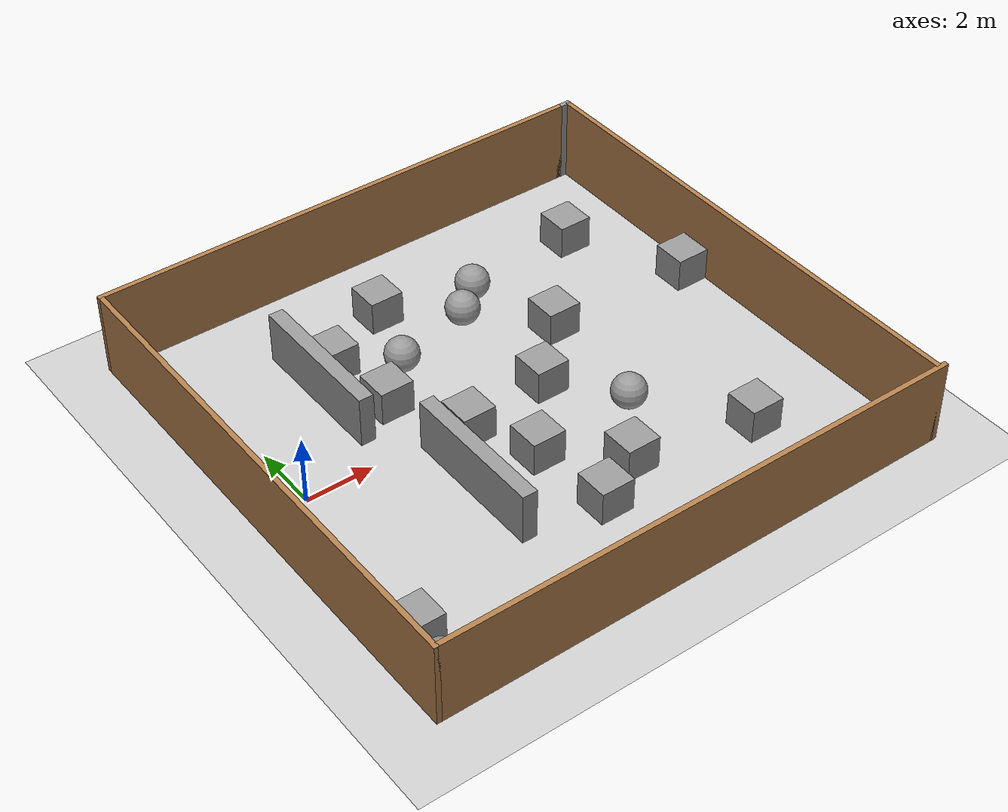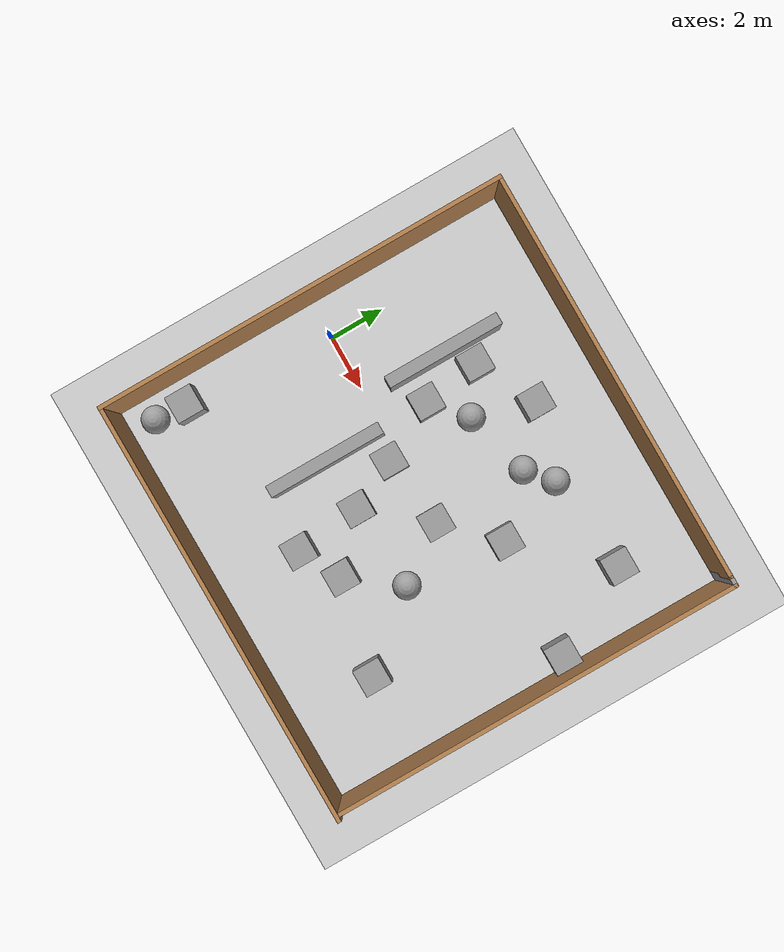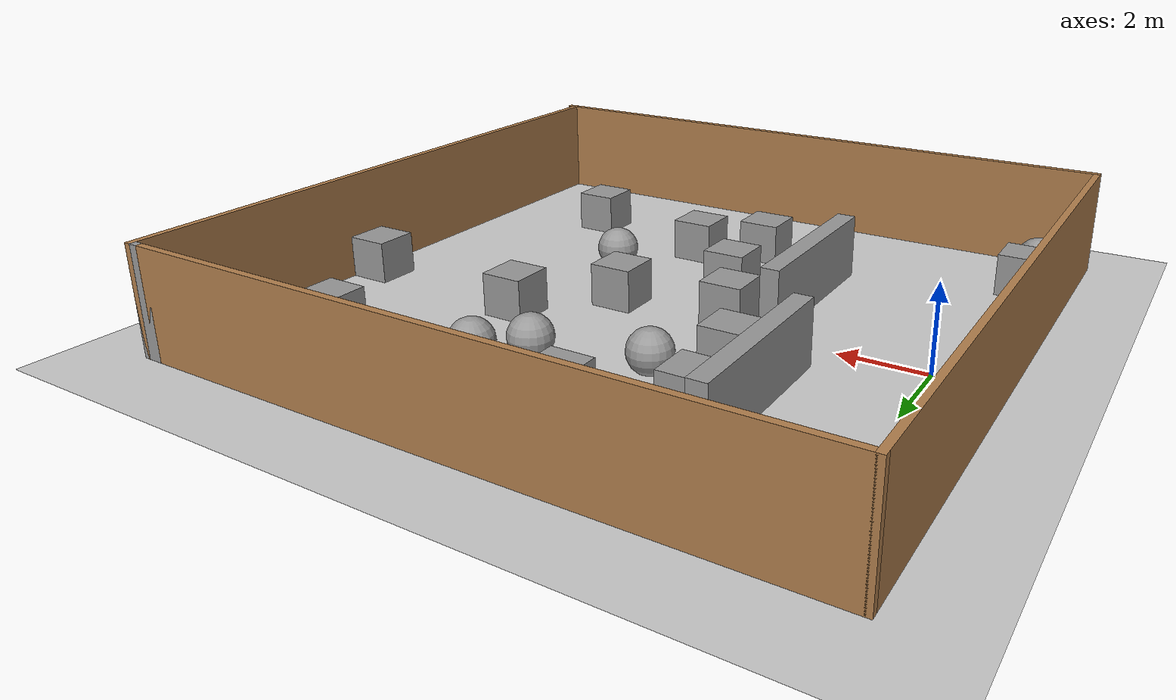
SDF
<sdf version="1.7">
 <world name="default">
  <light name="sun" type="directional">
   <pose>0 0 10 0 -0 0</pose>
   <diffuse>0.8 0.8 0.8 1</diffuse>
   <specular>0.2 0.2 0.2 1</specular>
   <attenuation>
    <range>1000</range>
    <constant>0.9</constant>
    <linear>0.01</linear>
    <quadratic>0.001</quadratic>
   </attenuation>
   <direction>-0.5 0.1 -0.9</direction>
   <spot><inner_angle>0</inner_angle><outer_angle>0</outer_angle><falloff>0</falloff></spot>
  </light>
  <model name="ground_plane">
   <static>1</static>
   <link name="link">
    <collision name="collision">
     <geometry><plane><normal>0 0 1</normal><size>100 100</size></plane></geometry>
     <surface><friction><ode><mu>100</mu><mu2>50</mu2></ode></friction></surface>
    </collision>
    <visual name="visual">
     <cast_shadows>0</cast_shadows>
     <geometry><plane><normal>0 0 1</normal><size>100 100</size></plane></geometry>
     <material>
      <script><uri>file://media/materials/scripts/gazebo.material</uri><name>Gazebo/Grey</name></script>
     </material>
    </visual>
   </link>
  </model>
  <gravity>0 0 -9.8</gravity>
  <magnetic_field>6e-06 2.3e-05 -4.2e-05</magnetic_field>
  <atmosphere type="adiabatic"/>
  <physics type="ode">
   <max_step_size>0.001</max_step_size>
   <real_time_factor>1</real_time_factor>
   <real_time_update_rate>1000</real_time_update_rate>
  </physics>
  <scene><ambient>0.4 0.4 0.4 1</ambient><background>0.7 0.7 0.7 1</background><shadows>1</shadows></scene>
  <spherical_coordinates>
   <surface_model>EARTH_WGS84</surface_model>
   <latitude_deg>0</latitude_deg>
   <longitude_deg>0</longitude_deg>
   <elevation>0</elevation>
   <heading_deg>0</heading_deg>
  </spherical_coordinates>
  <model name="square01">
   <pose>6.34279 -0.168803 0 0 -0 0</pose>
   <link name="Wall_11">
    <collision name="Wall_11_Collision">
     <geometry><box><size>15.25 0.15 2.5</size></box></geometry>
     <pose>0 0 1.25 0 -0 0</pose>
    </collision>
    <visual name="Wall_11_Visual">
     <pose>0 0 1.25 0 -0 0</pose>
     <geometry><box><size>15.25 0.15 2.5</size></box></geometry>
     <material>
      <script><uri>file://media/materials/scripts/gazebo.material</uri><name>Gazebo/Wood</name></script>
      <ambient>1 1 1 1</ambient>
     </material>
     <meta><layer>0</layer></meta>
    </visual>
    <pose>-7.8 0 0 0 -0 -1.5708</pose>
   </link>
   <link name="Wall_13">
    <collision name="Wall_13_Collision">
     <geometry><box><size>15.75 0.15 2.5</size></box></geometry>
     <pose>0 0 1.25 0 -0 0</pose>
    </collision>
    <visual name="Wall_13_Visual">
     <pose>0 0 1.25 0 -0 0</pose>
     <geometry><box><size>15.75 0.15 2.5</size></box></geometry>
     <material>
      <script><uri>file://media/materials/scripts/gazebo.material</uri><name>Gazebo/Wood</name></script>
      <ambient>1 1 1 1</ambient>
     </material>
     <meta><layer>0</layer></meta>
    </visual>
    <pose>0 -7.55 0 0 -0 0</pose>
   </link>
   <link name="Wall_15">
    <collision name="Wall_15_Collision">
     <geometry><box><size>15.25 0.15 2.5</size></box></geometry>
     <pose>0 0 1.25 0 -0 0</pose>
    </collision>
    <visual name="Wall_15_Visual">
     <pose>0 0 1.25 0 -0 0</pose>
     <geometry><box><size>15.25 0.15 2.5</size></box></geometry>
     <material>
      <script><uri>file://media/materials/scripts/gazebo.material</uri><name>Gazebo/Wood</name></script>
      <ambient>1 1 1 1</ambient>
     </material>
     <meta><layer>0</layer></meta>
    </visual>
    <pose>-0.25 7.55 0 0 -0 0</pose>
   </link>
   <link name="Wall_16">
    <collision name="Wall_16_Collision">
     <geometry><box><size>0.5 0.15 2.5</size></box></geometry>
     <pose>0 0 1.25 0 -0 0</pose>
    </collision>
    <visual name="Wall_16_Visual">
     <pose>0 0 1.25 0 -0 0</pose>
     <geometry><box><size>0.5 0.15 2.5</size></box></geometry>
     <material>
      <script><uri>file://media/materials/scripts/gazebo.material</uri><name>Gazebo/Grey</name></script>
      <ambient>1 1 1 1</ambient>
     </material>
     <meta><layer>0</layer></meta>
    </visual>
    <pose>7.475 7.55 0 0 -0 0</pose>
   </link>
   <link name="Wall_17">
    <collision name="Wall_17_Collision">
     <geometry><box><size>15.25 0.15 2.5</size></box></geometry>
     <pose>0 0 1.25 0 -0 0</pose>
    </collision>
    <visual name="Wall_17_Visual">
     <pose>0 0 1.25 0 -0 0</pose>
     <geometry><box><size>15.25 0.15 2.5</size></box></geometry>
     <material>
      <script><uri>file://media/materials/scripts/gazebo.material</uri><name>Gazebo/Wood</name></script>
      <ambient>1 1 1 1</ambient>
     </material>
     <meta><layer>0</layer></meta>
    </visual>
    <pose>7.65 0 0 0 -0 -1.5708</pose>
   </link>
   <static>1</static>
  </model>
  <model name="unit_box">
   <pose>5.4748 4.93046 0.5 0 -0 0</pose>
   <link name="link">
    <inertial>
     <mass>1</mass>
     <inertia>
      <ixx>0.166667</ixx>
      <ixy>0</ixy>
      <ixz>0</ixz>
      <iyy>0.166667</iyy>
      <iyz>0</iyz>
      <izz>0.166667</izz>
     </inertia>
    </inertial>
    <collision name="collision"><geometry><box><size>1 1 1</size></box></geometry></collision>
    <visual name="visual">
     <geometry><box><size>1 1 1</size></box></geometry>
     <material>
      <script><name>Gazebo/Grey</name><uri>file://media/materials/scripts/gazebo.material</uri></script>
     </material>
    </visual>
   </link>
  </model>
  <model name="unit_box_2">
   <pose>7.32303 -3.81277 0.5 0 -0 0</pose>
   <link name="link">
    <inertial>
     <mass>1</mass>
     <inertia>
      <ixx>0.166667</ixx>
      <ixy>0</ixy>
      <ixz>0</ixz>
      <iyy>0.166667</iyy>
      <iyz>0</iyz>
      <izz>0.166667</izz>
     </inertia>
    </inertial>
    <collision name="collision"><geometry><box><size>1 1 1</size></box></geometry></collision>
    <visual name="visual">
     <geometry><box><size>1 1 1</size></box></geometry>
     <material>
      <script><name>Gazebo/Grey</name><uri>file://media/materials/scripts/gazebo.material</uri></script>
     </material>
    </visual>
   </link>
  </model>
  <model name="unit_sphere">
   <pose>8.15725 4.18967 0.5 0 -0 0</pose>
   <link name="link">
    <inertial>
     <mass>1</mass>
     <inertia><ixx>0.1</ixx><ixy>0</ixy><ixz>0</ixz><iyy>0.1</iyy><iyz>0</iyz><izz>0.1</izz></inertia>
    </inertial>
    <collision name="collision"><geometry><sphere><radius>0.5</radius></sphere></geometry></collision>
    <visual name="visual">
     <geometry><sphere><radius>0.5</radius></sphere></geometry>
     <material>
      <script><name>Gazebo/Grey</name><uri>file://media/materials/scripts/gazebo.material</uri></script>
     </material>
    </visual>
   </link>
  </model>
  <model name="unit_box_3">
   <pose>5.57634 -2.18999 0.5 0 -0 0</pose>
   <link name="link">
    <inertial>
     <mass>1</mass>
     <inertia>
      <ixx>0.166667</ixx>
      <ixy>0</ixy>
      <ixz>0</ixz>
      <iyy>0.166667</iyy>
      <iyz>0</iyz>
      <izz>0.166667</izz>
     </inertia>
    </inertial>
    <collision name="collision"><geometry><box><size>1 1 1</size></box></geometry></collision>
    <visual name="visual">
     <geometry><box><size>1 1 1</size></box></geometry>
     <material>
      <script><name>Gazebo/Grey</name><uri>file://media/materials/scripts/gazebo.material</uri></script>
     </material>
    </visual>
   </link>
  </model>
  <model name="unit_sphere_0">
   <pose>8.714 -2.02041 0.5 0 -0 0</pose>
   <link name="link">
    <inertial>
     <mass>1</mass>
     <inertia><ixx>0.1</ixx><ixy>0</ixy><ixz>0</ixz><iyy>0.1</iyy><iyz>0</iyz><izz>0.1</izz></inertia>
    </inertial>
    <collision name="collision"><geometry><sphere><radius>0.5</radius></sphere></geometry></collision>
    <visual name="visual">
     <geometry><sphere><radius>0.5</radius></sphere></geometry>
     <material>
      <script><name>Gazebo/Grey</name><uri>file://media/materials/scripts/gazebo.material</uri></script>
     </material>
    </visual>
   </link>
  </model>
  <model name="unit_box_4">
   <pose>9.06461 1.6481 0.5 0 -0 0</pose>
   <link name="link">
    <inertial>
     <mass>1</mass>
     <inertia>
      <ixx>0.166667</ixx>
      <ixy>0</ixy>
      <ixz>0</ixz>
      <iyy>0.166667</iyy>
      <iyz>0</iyz>
      <izz>0.166667</izz>
     </inertia>
    </inertial>
    <collision name="collision"><geometry><box><size>1 1 1</size></box></geometry></collision>
    <visual name="visual">
     <geometry><box><size>1 1 1</size></box></geometry>
     <material>
      <script><name>Gazebo/Grey</name><uri>file://media/materials/scripts/gazebo.material</uri></script>
     </material>
    </visual>
   </link>
  </model>
  <model name="unit_sphere_1">
   <pose>4.81301 2.77811 0.5 0 -0 0</pose>
   <link name="link">
    <inertial>
     <mass>1</mass>
     <inertia><ixx>0.1</ixx><ixy>0</ixy><ixz>0</ixz><iyy>0.1</iyy><iyz>0</iyz><izz>0.1</izz></inertia>
    </inertial>
    <collision name="collision"><geometry><sphere><radius>0.5</radius></sphere></geometry></collision>
    <visual name="visual">
     <geometry><sphere><radius>0.5</radius></sphere></geometry>
     <material>
      <script><name>Gazebo/Grey</name><uri>file://media/materials/scripts/gazebo.material</uri></script>
     </material>
    </visual>
   </link>
  </model>
  <model name="unit_box_5">
   <pose>10.8002 -4.57428 0.5 0 -0 0</pose>
   <link name="link">
    <inertial>
     <mass>1</mass>
     <inertia>
      <ixx>0.166667</ixx>
      <ixy>0</ixy>
      <ixz>0</ixz>
      <iyy>0.166667</iyy>
      <iyz>0</iyz>
      <izz>0.166667</izz>
     </inertia>
    </inertial>
    <collision name="collision"><geometry><box><size>1 1 1</size></box></geometry></collision>
    <visual name="visual">
     <geometry><box><size>1 1 1</size></box></geometry>
     <material>
      <script><name>Gazebo/Grey</name><uri>file://media/materials/scripts/gazebo.material</uri></script>
     </material>
    </visual>
   </link>
  </model>
  <model name="unit_box1_clone_clone">
   <link name="link">
    <inertial>
     <mass>2.89311</mass>
     <inertia><ixx>5.09745</ixx><ixy>0</ixy><ixz>0</ixz><iyy>0.604244</iyy><iyz>0</iyz><izz>4.58584</izz></inertia>
    </inertial>
    <visual name="visual">
     <geometry><box><size>0.438301 4.33924 1.52124</size></box></geometry>
     <material>
      <script><name>Gazebo/Grey</name><uri>file://media/materials/scripts/gazebo.material</uri></script>
      <shader type="pixel"/>
     </material>
    </visual>
    <collision name="collision">
     <geometry><box><size>0.438301 4.33924 1.52124</size></box></geometry>
     <surface>
      <friction>
       <ode><mu>1</mu><mu2>1</mu2><fdir1>0 0 0</fdir1><slip1>0</slip1><slip2>0</slip2></ode>
       <torsional>
        <coefficient>1</coefficient>
        <patch_radius>0</patch_radius>
        <surface_radius>0</surface_radius>
        <use_patch_radius>1</use_patch_radius>
        <ode><slip>0</slip></ode>
       </torsional>
      </friction>
      <bounce><restitution_coefficient>0</restitution_coefficient><threshold>1e+06</threshold></bounce>
      <contact>
       <collide_without_contact>0</collide_without_contact>
       <collide_without_contact_bitmask>1</collide_without_contact_bitmask>
       <collide_bitmask>1</collide_bitmask>
       <ode>
        <soft_cfm>0</soft_cfm>
        <soft_erp>0.2</soft_erp>
        <kp>1e+13</kp>
        <kd>1</kd>
        <max_vel>0.01</max_vel>
        <min_depth>0</min_depth>
       </ode>
       <bullet>
        <split_impulse>1</split_impulse>
        <split_impulse_penetration_threshold>-0.01</split_impulse_penetration_threshold>
        <soft_cfm>0</soft_cfm>
        <soft_erp>0.2</soft_erp>
        <kp>1e+13</kp>
        <kd>1</kd>
       </bullet>
      </contact>
     </surface>
    </collision>
   </link>
   <static>0</static>
   <pose>3.62886 -2.25911 0.76062 0 -0 3e-06</pose>
  </model>
  <model name="unit_box1_clone_0">
   <link name="link">
    <inertial>
     <mass>2.89311</mass>
     <inertia><ixx>5.09745</ixx><ixy>0</ixy><ixz>0</ixz><iyy>0.604244</iyy><iyz>0</iyz><izz>4.58584</izz></inertia>
    </inertial>
    <visual name="visual">
     <geometry><box><size>0.438301 4.33924 1.52124</size></box></geometry>
     <material>
      <script><name>Gazebo/Grey</name><uri>file://media/materials/scripts/gazebo.material</uri></script>
      <shader type="pixel"/>
     </material>
    </visual>
    <collision name="collision">
     <geometry><box><size>0.438301 4.33924 1.52124</size></box></geometry>
     <surface>
      <friction>
       <ode><mu>1</mu><mu2>1</mu2><fdir1>0 0 0</fdir1><slip1>0</slip1><slip2>0</slip2></ode>
       <torsional>
        <coefficient>1</coefficient>
        <patch_radius>0</patch_radius>
        <surface_radius>0</surface_radius>
        <use_patch_radius>1</use_patch_radius>
        <ode><slip>0</slip></ode>
       </torsional>
      </friction>
      <bounce><restitution_coefficient>0</restitution_coefficient><threshold>1e+06</threshold></bounce>
      <contact>
       <collide_without_contact>0</collide_without_contact>
       <collide_without_contact_bitmask>1</collide_without_contact_bitmask>
       <collide_bitmask>1</collide_bitmask>
       <ode>
        <soft_cfm>0</soft_cfm>
        <soft_erp>0.2</soft_erp>
        <kp>1e+13</kp>
        <kd>1</kd>
        <max_vel>0.01</max_vel>
        <min_depth>0</min_depth>
       </ode>
       <bullet>
        <split_impulse>1</split_impulse>
        <split_impulse_penetration_threshold>-0.01</split_impulse_penetration_threshold>
        <soft_cfm>0</soft_cfm>
        <soft_erp>0.2</soft_erp>
        <kp>1e+13</kp>
        <kd>1</kd>
       </bullet>
      </contact>
     </surface>
    </collision>
   </link>
   <static>0</static>
   <pose>2.43527 3.02227 0.760613 -3e-06 1e-06 -2.6e-05</pose>
  </model>
  <model name="unit_box_2_clone">
   <pose>5.84288 -4.60435 0.5 0 -0 0</pose>
   <link name="link">
    <inertial>
     <mass>1</mass>
     <inertia>
      <ixx>0.166667</ixx>
      <ixy>0</ixy>
      <ixz>0</ixz>
      <iyy>0.166667</iyy>
      <iyz>0</iyz>
      <izz>0.166667</izz>
     </inertia>
    </inertial>
    <collision name="collision"><geometry><box><size>1 1 1</size></box></geometry></collision>
    <visual name="visual">
     <geometry><box><size>1 1 1</size></box></geometry>
     <material>
      <script><name>Gazebo/Grey</name><uri>file://media/materials/scripts/gazebo.material</uri></script>
     </material>
    </visual>
   </link>
  </model>
  <model name="unit_box_3_clone">
   <pose>3.29406 3.79799 0.5 0 -0 0</pose>
   <link name="link">
    <inertial>
     <mass>1</mass>
     <inertia>
      <ixx>0.166667</ixx>
      <ixy>0</ixy>
      <ixz>0</ixz>
      <iyy>0.166667</iyy>
      <iyz>0</iyz>
      <izz>0.166667</izz>
     </inertia>
    </inertial>
    <collision name="collision"><geometry><box><size>1 1 1</size></box></geometry></collision>
    <visual name="visual">
     <geometry><box><size>1 1 1</size></box></geometry>
     <material>
      <script><name>Gazebo/Grey</name><uri>file://media/materials/scripts/gazebo.material</uri></script>
     </material>
    </visual>
   </link>
  </model>
  <model name="unit_box_5_clone">
   <pose>11.7298 4.57334 0.5 0 -0 0</pose>
   <link name="link">
    <inertial>
     <mass>1</mass>
     <inertia>
      <ixx>0.166667</ixx>
      <ixy>0</ixy>
      <ixz>0</ixz>
      <iyy>0.166667</iyy>
      <iyz>0</iyz>
      <izz>0.166667</izz>
     </inertia>
    </inertial>
    <collision name="collision"><geometry><box><size>1 1 1</size></box></geometry></collision>
    <visual name="visual">
     <geometry><box><size>1 1 1</size></box></geometry>
     <material>
      <script><name>Gazebo/Grey</name><uri>file://media/materials/scripts/gazebo.material</uri></script>
     </material>
    </visual>
   </link>
  </model>
  <model name="unit_box_5_clone_0">
   <pose>13.4178 1.38806 0.5 0 -0 0</pose>
   <link name="link">
    <inertial>
     <mass>1</mass>
     <inertia>
      <ixx>0.166667</ixx>
      <ixy>0</ixy>
      <ixz>0</ixz>
      <iyy>0.166667</iyy>
      <iyz>0</iyz>
      <izz>0.166667</izz>
     </inertia>
    </inertial>
    <collision name="collision"><geometry><box><size>1 1 1</size></box></geometry></collision>
    <visual name="visual">
     <geometry><box><size>1 1 1</size></box></geometry>
     <material>
      <script><name>Gazebo/Grey</name><uri>file://media/materials/scripts/gazebo.material</uri></script>
     </material>
    </visual>
   </link>
  </model>
  <model name="unit_sphere_0_clone">
   <pose>-0.529661 -6.63358 0.5 0 -0 0</pose>
   <link name="link">
    <inertial>
     <mass>1</mass>
     <inertia><ixx>0.1</ixx><ixy>0</ixy><ixz>0</ixz><iyy>0.1</iyy><iyz>0</iyz><izz>0.1</izz></inertia>
    </inertial>
    <collision name="collision"><geometry><sphere><radius>0.5</radius></sphere></geometry></collision>
    <visual name="visual">
     <geometry><sphere><radius>0.5</radius></sphere></geometry>
     <material>
      <script><name>Gazebo/Grey</name><uri>file://media/materials/scripts/gazebo.material</uri></script>
     </material>
    </visual>
   </link>
  </model>
  <model name="unit_box_5_clone_1">
   <pose>-0.436376 -5.45594 0.5 0 -0 0</pose>
   <link name="link">
    <inertial>
     <mass>1</mass>
     <inertia>
      <ixx>0.166667</ixx>
      <ixy>0</ixy>
      <ixz>0</ixz>
      <iyy>0.166667</iyy>
      <iyz>0</iyz>
      <izz>0.166667</izz>
     </inertia>
    </inertial>
    <collision name="collision"><geometry><box><size>1 1 1</size></box></geometry></collision>
    <visual name="visual">
     <geometry><box><size>1 1 1</size></box></geometry>
     <material>
      <script><name>Gazebo/Grey</name><uri>file://media/materials/scripts/gazebo.material</uri></script>
     </material>
    </visual>
   </link>
  </model>
  <model name="unit_box_1_clone_clone">
   <pose>3.59913 1.69169 0.5 0 -0 0</pose>
   <link name="link">
    <inertial>
     <mass>1</mass>
     <inertia>
      <ixx>0.166667</ixx>
      <ixy>0</ixy>
      <ixz>0</ixz>
      <iyy>0.166667</iyy>
      <iyz>0</iyz>
      <izz>0.166667</izz>
     </inertia>
    </inertial>
    <collision name="collision"><geometry><box><size>1 1 1</size></box></geometry></collision>
    <visual name="visual">
     <geometry><box><size>1 1 1</size></box></geometry>
     <material>
      <script><name>Gazebo/Grey</name><uri>file://media/materials/scripts/gazebo.material</uri></script>
     </material>
    </visual>
   </link>
  </model>
  <model name="unit_sphere_clone">
   <pose>7.26706 3.41687 0.5 0 -0 0</pose>
   <link name="link">
    <inertial>
     <mass>1</mass>
     <inertia><ixx>0.1</ixx><ixy>0</ixy><ixz>0</ixz><iyy>0.1</iyy><iyz>0</iyz><izz>0.1</izz></inertia>
    </inertial>
    <collision name="collision"><geometry><sphere><radius>0.5</radius></sphere></geometry></collision>
    <visual name="visual">
     <geometry><sphere><radius>0.5</radius></sphere></geometry>
     <material>
      <script><name>Gazebo/Grey</name><uri>file://media/materials/scripts/gazebo.material</uri></script>
     </material>
    </visual>
   </link>
  </model>
  <model name="unit_box_1_clone_clone_0_clone_clone">
   <pose>4.71183 -0.400993 0.5 0 -0 0.003</pose>
   <link name="link">
    <inertial>
     <mass>1</mass>
     <inertia>
      <ixx>0.166667</ixx>
      <ixy>0</ixy>
      <ixz>0</ixz>
      <iyy>0.166667</iyy>
      <iyz>0</iyz>
      <izz>0.166667</izz>
     </inertia>
    </inertial>
    <collision name="collision"><geometry><box><size>1 1 1</size></box></geometry></collision>
    <visual name="visual">
     <geometry><box><size>1 1 1</size></box></geometry>
     <material>
      <script><name>Gazebo/Grey</name><uri>file://media/materials/scripts/gazebo.material</uri></script>
     </material>
    </visual>
   </link>
  </model>
  <model name="unit_box_1_clone_clone_0_clone_clone_0">
   <pose>7.33685 -0.074732 0.5 0 -0 0.003</pose>
   <link name="link">
    <inertial>
     <mass>1</mass>
     <inertia>
      <ixx>0.166667</ixx>
      <ixy>0</ixy>
      <ixz>0</ixz>
      <iyy>0.166667</iyy>
      <iyz>0</iyz>
      <izz>0.166667</izz>
     </inertia>
    </inertial>
    <collision name="collision"><geometry><box><size>1 1 1</size></box></geometry></collision>
    <visual name="visual">
     <geometry><box><size>1 1 1</size></box></geometry>
     <material>
      <script><name>Gazebo/Grey</name><uri>file://media/materials/scripts/gazebo.material</uri></script>
     </material>
    </visual>
   </link>
  </model>
 </world>
</sdf>
